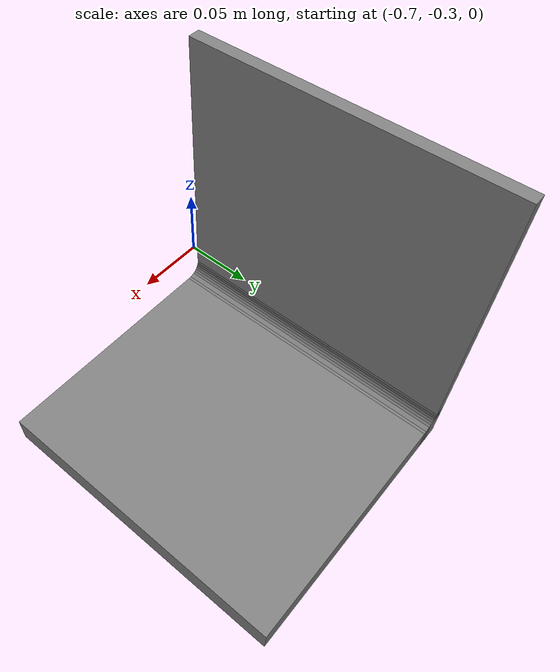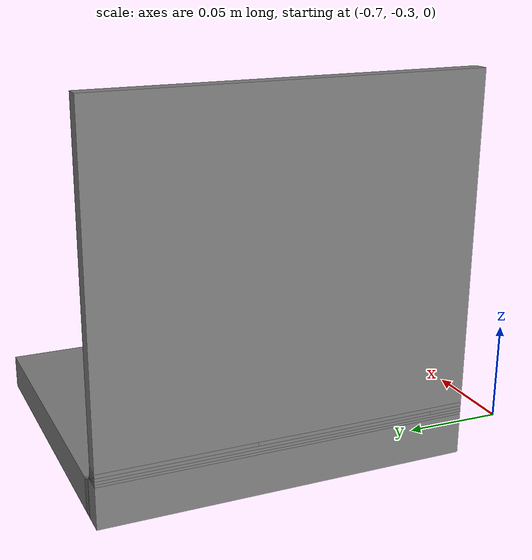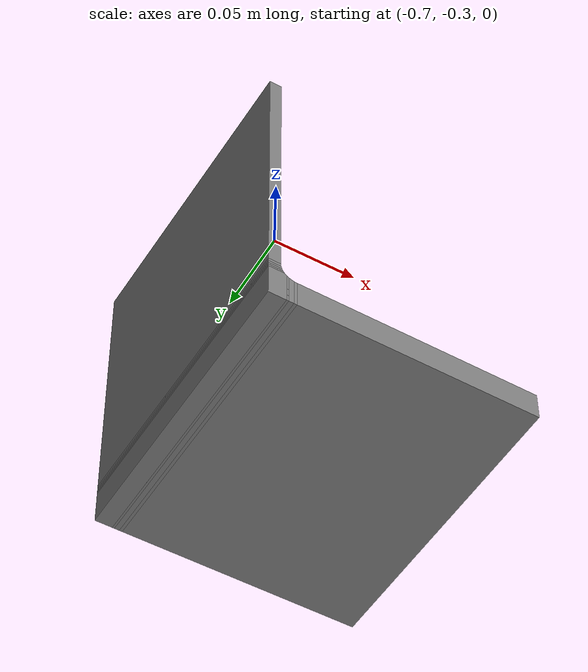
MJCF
<mujoco>
  <asset>
    <mesh name="90degree_model_col_0" file="/home/lgx/Project/AFP/src/afp_mjc/env/90degree_model/meshes/parts/90degree_model_part_0.STL"/>
    <mesh name="90degree_model_col_1" file="/home/lgx/Project/AFP/src/afp_mjc/env/90degree_model/meshes/parts/90degree_model_part_1.STL"/>
    <mesh name="90degree_model_col_2" file="/home/lgx/Project/AFP/src/afp_mjc/env/90degree_model/meshes/parts/90degree_model_part_2.STL"/>
    <mesh name="90degree_model_col_3" file="/home/lgx/Project/AFP/src/afp_mjc/env/90degree_model/meshes/parts/90degree_model_part_3.STL"/>
    <mesh name="90degree_model_col_4" file="/home/lgx/Project/AFP/src/afp_mjc/env/90degree_model/meshes/parts/90degree_model_part_4.STL"/>
    <mesh name="90degree_model_col_5" file="/home/lgx/Project/AFP/src/afp_mjc/env/90degree_model/meshes/parts/90degree_model_part_5.STL"/>
    <mesh name="90degree_model_col_6" file="/home/lgx/Project/AFP/src/afp_mjc/env/90degree_model/meshes/parts/90degree_model_part_6.STL"/>
    <mesh name="90degree_model_col_7" file="/home/lgx/Project/AFP/src/afp_mjc/env/90degree_model/meshes/parts/90degree_model_part_7.STL"/>
    <mesh name="90degree_model_col_8" file="/home/lgx/Project/AFP/src/afp_mjc/env/90degree_model/meshes/parts/90degree_model_part_8.STL"/>
    <mesh name="90degree_model_col_9" file="/home/lgx/Project/AFP/src/afp_mjc/env/90degree_model/meshes/parts/90degree_model_part_9.STL"/>
    <mesh name="90degree_model_col_10" file="/home/lgx/Project/AFP/src/afp_mjc/env/90degree_model/meshes/parts/90degree_model_part_10.STL"/>
    <mesh name="90degree_model_col_11" file="/home/lgx/Project/AFP/src/afp_mjc/env/90degree_model/meshes/parts/90degree_model_part_11.STL"/>
    <mesh name="90degree_model_col_12" file="/home/lgx/Project/AFP/src/afp_mjc/env/90degree_model/meshes/parts/90degree_model_part_12.STL"/>
    <mesh name="90degree_model_col_13" file="/home/lgx/Project/AFP/src/afp_mjc/env/90degree_model/meshes/parts/90degree_model_part_13.STL"/>
    <mesh name="90degree_model_col_14" file="/home/lgx/Project/AFP/src/afp_mjc/env/90degree_model/meshes/parts/90degree_model_part_14.STL"/>
    <mesh name="90degree_model_col_15" file="/home/lgx/Project/AFP/src/afp_mjc/env/90degree_model/meshes/parts/90degree_model_part_15.STL"/>
    <mesh name="90degree_model_col_16" file="/home/lgx/Project/AFP/src/afp_mjc/env/90degree_model/meshes/parts/90degree_model_part_16.STL"/>
    <mesh name="90degree_model_col_17" file="/home/lgx/Project/AFP/src/afp_mjc/env/90degree_model/meshes/parts/90degree_model_part_17.STL"/>
    <mesh name="90degree_model_col_18" file="/home/lgx/Project/AFP/src/afp_mjc/env/90degree_model/meshes/parts/90degree_model_part_18.STL"/>
  </asset>

  <worldbody>
    <body name="90degree_model" pos="-0.63058575 -0.18203986 -0.02128407" quat="-0.712495818983 -0.001236459978 0.004315905151 0.701662174367">
        <body name="col_0">
            <geom type="mesh" mesh="90degree_model_col_0" group="2"/>
        </body>
        <body name="col_1">
            <geom type="mesh" mesh="90degree_model_col_1" group="2"/>
        </body>
        <body name="col_2">
            <geom type="mesh" mesh="90degree_model_col_2" group="2"/>
        </body>
        <body name="col_3">
            <geom type="mesh" mesh="90degree_model_col_3" group="2"/>
        </body>
        <body name="col_4">
            <geom type="mesh" mesh="90degree_model_col_4" group="2"/>
        </body>
        <body name="col_5">
            <geom type="mesh" mesh="90degree_model_col_5" group="2"/>
        </body>
        <body name="col_6">
            <geom type="mesh" mesh="90degree_model_col_6" group="2"/>
        </body>
        <body name="col_7">
            <geom type="mesh" mesh="90degree_model_col_7" group="2"/>
        </body>
        <body name="col_8">
            <geom type="mesh" mesh="90degree_model_col_8" group="2"/>
        </body>
        <body name="col_9">
            <geom type="mesh" mesh="90degree_model_col_9" group="2"/>
        </body>
        <body name="col_10">
            <geom type="mesh" mesh="90degree_model_col_10" group="2"/>
        </body>
        <body name="col_11">
            <geom type="mesh" mesh="90degree_model_col_11" group="2"/>
        </body>
        <body name="col_12">
            <geom type="mesh" mesh="90degree_model_col_12" group="2"/>
        </body>
        <body name="col_13">
            <geom type="mesh" mesh="90degree_model_col_13" group="2"/>
        </body>
        <body name="col_14">
            <geom type="mesh" mesh="90degree_model_col_14" group="2"/>
        </body>
        <body name="col_15">
            <geom type="mesh" mesh="90degree_model_col_15" group="2"/>
        </body>
        <body name="col_16">
            <geom type="mesh" mesh="90degree_model_col_16" group="2"/>
        </body>
        <body name="col_17">
            <geom type="mesh" mesh="90degree_model_col_17" group="2"/>
        </body>
        <body name="col_18">
            <geom type="mesh" mesh="90degree_model_col_18" group="2"/>
        </body>
    </body>
  </worldbody>
</mujoco>
